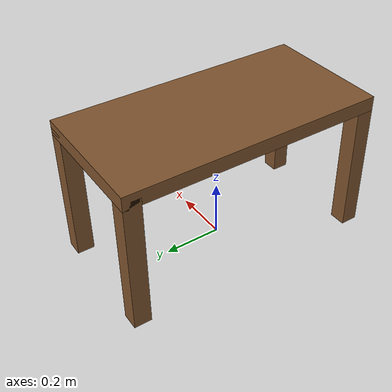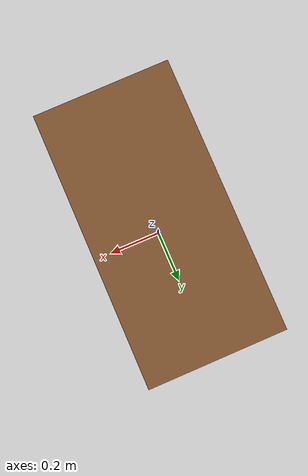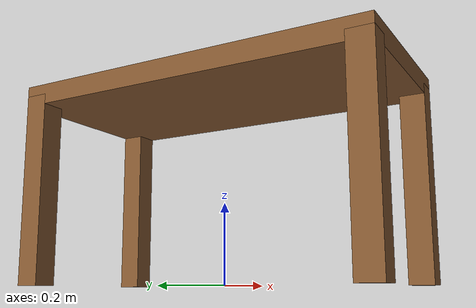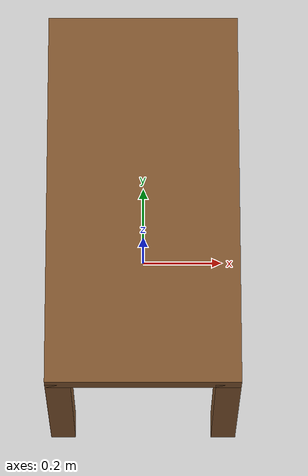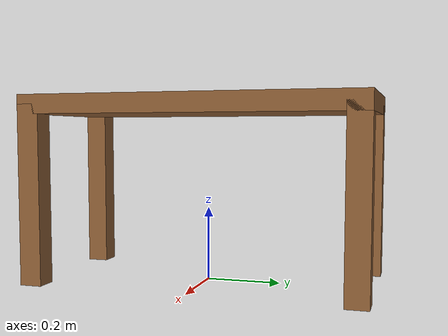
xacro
<?xml version="1.0" ?>
<robot name="lab_wood_table" xmlns:xacro="http://ros.org/wiki/xacro">

<!-- Property List -->
<xacro:property name="pi" value="3.1415926535897931" />
<xacro:property name="table_base_length" value="0.9144" />
<xacro:property name="table_thickness" value="0.0508" />
<xacro:property name="table_base_width" value="0.4572" />

<xacro:property name="leg_height" value="0.4826" />
<xacro:property name="leg_length" value="0.06" />
<xacro:property name="leg_width" value="0.06" />

<!-- Color macros -->
<xacro:macro name="material_brown_transparent">
        <material name="brown_transparent">
                <color rgba="${139/255} ${69/255} ${19/255} 0.4" />
        </material>
</xacro:macro>

<!-- Base Link -->
<link name = "table_base">
<inertial>
 <origin xyz = "0 0 ${leg_height}" />
 <mass value = "1.0" />
 <inertia ixx="1" ixy="0"  ixz="0"
               iyy="1" iyz="0"
               izz="1" />
 </inertial>
<visual>
  <origin xyz = "0 0 ${leg_height}" />
  <geometry>
     <box size="${table_base_width} ${table_base_length} ${table_thickness}"/>
  </geometry>
  <material name="brown_transparent"/>
</visual>
<collision>
  <origin xyz = "0 0 ${leg_height}" />
  <geometry>
     <box size="${table_base_width} ${table_base_length} ${table_thickness}"/>
  </geometry>
  <material name="brown_transparent"/>
</collision>
</link>

<!--First Leg -->
<link name = "first_leg">
<inertial>
      <mass value="1.0" />
      <origin xyz="0 0 ${-leg_height}" />
      <inertia ixx="0.1" ixy="0"  ixz="0"
               iyy="0.1" iyz="0"
               izz="0.01" />
    </inertial>
<visual>
  <origin xyz="0 0 ${-leg_height}" rpy="0 0 0" />
  <geometry>
        <box size="${leg_width} ${leg_width}  ${leg_height}"/>
  </geometry>
  <material name="brown_transparent"/>
</visual>
<collision>
  <origin xyz="0 0 ${-leg_height}" rpy="0 0 0" />
  <geometry>
        <box size="${leg_width} ${leg_width} ${leg_height}"/>
  </geometry>
  <material name="brown_transparent"/>
</collision>
</link>

<!-- Base to First Leg-->
<joint name="base_to_first_leg" type="fixed">
  <parent link="table_base"/>
  <child link="first_leg"/>
  <axis xyz="0 0 1"/>
  <origin rpy="0.0 0.0 0.0" xyz="${table_base_width/2-0.03} ${table_base_length/2-0.03} ${leg_height*1.5}"/>
</joint>

<!--Second Leg -->
<link name = "second_leg">
<inertial>
      <mass value="1.0" />
      <origin xyz="0 0 ${-leg_height}" />
      <inertia ixx="0.1" ixy="0"  ixz="0"
               iyy="0.1" iyz="0"
               izz="0.01" />
    </inertial>
<visual>
  <origin xyz="0 0 ${-leg_height}" rpy="0 0 0" />
  <geometry>
        <box size="${leg_width} ${leg_width} ${leg_height}"/>
  </geometry>
  <material name="brown_transparent"/>
</visual>
<collision>
  <origin xyz="0 0 ${-leg_height}" rpy="0 0 0" />
  <geometry>
        <box size="${leg_width} ${leg_width} ${leg_height}"/>
  </geometry>
  <material name="brown_transparent"/>
</collision>
</link>

<!-- Base to Second Leg-->
<joint name="base_to_second_leg" type="fixed">
  <parent link="table_base"/>
  <child link="second_leg"/>
  <axis xyz="0 0 1"/>
  <origin rpy="0.0 0.0 0.0" xyz="-${table_base_width/2 - 0.03} -${table_base_length/2 - 0.03} ${leg_height*1.5}"/>
</joint>

<!--Third Leg -->
<link name = "third_leg">
<inertial>
      <mass value="1.0" />
      <origin xyz="0 0 ${-leg_height}" />
      <inertia ixx="0.1" ixy="0"  ixz="0"
               iyy="0.1" iyz="0"
               izz="0.01" />
    </inertial>
<visual>
  <origin xyz="0 0 ${-leg_height}" rpy="0 0 0" />
  <geometry>
        <box size="${leg_width} ${leg_width} ${leg_height}"/>
  </geometry>
  <material name="brown_transparent"/>
</visual>
<collision>
  <origin xyz="0 0 ${-leg_height}" rpy="0 0 0" />
  <geometry>
        <box size="${leg_width} ${leg_width} ${leg_height}"/>
  </geometry>
  <material name="brown_transparent"/>
</collision>
</link>

<!-- Base to third Leg-->
<joint name="base_to_third_leg" type="fixed">
  <parent link="table_base"/>
  <child link="third_leg"/>
  <axis xyz="0 0 1"/>
  <origin rpy="0.0 0.0 0.0" xyz="-${table_base_width/2 - 0.03} ${table_base_length/2 - 0.03} ${leg_height*1.5}"/>
</joint>

<!--Fourth Leg -->
<link name = "fourth_leg">
<inertial>
      <mass value="1.0" />
      <origin xyz="0 0 ${-leg_height}" />
      <inertia ixx="0.1" ixy="0"  ixz="0"
               iyy="0.1" iyz="0"
               izz="0.01" />
    </inertial>
<visual>
  <origin xyz="0 0 ${-leg_height}" rpy="0 0 0" />
  <geometry>
        <box size="${leg_width} ${leg_width} ${leg_height}"/>
  </geometry>
  <material name="brown_transparent"/>
</visual>
<collision>
  <origin xyz="0 0 ${-leg_height}" rpy="0 0 0" />
  <geometry>
        <box size="${leg_width} ${leg_width} ${leg_height}"/>
  </geometry>
  <material name="brown_transparent"/>
</collision>
</link>

<!-- Base to third Leg-->
<joint name="base_to_fourth_leg" type="fixed">
  <parent link="table_base"/>
  <child link="fourth_leg"/>
  <axis xyz="0 0 1"/>
  <origin rpy="0.0 0.0 0.0" xyz="${table_base_width/2 - 0.03} -${table_base_length/2 - 0.03} ${leg_height*1.5}"/>
</joint>

<gazebo reference="table_base">
   <material>Gazebo/Wood</material>
   <mu1>50.0</mu1>
   <mu2>50.0</mu2>
   <kp>1000000.0</kp>
   <kd>1.0</kd>
</gazebo>

<gazebo reference="first_leg">
   <material>Gazebo/Wood</material>
</gazebo>

<gazebo reference="second_leg">
   <material>Gazebo/Wood</material>
</gazebo>

<gazebo reference="third_leg">
   <material>Gazebo/Wood</material>
</gazebo>

<gazebo reference="fourth_leg">
   <material>Gazebo/Wood</material>
</gazebo>

</robot>
